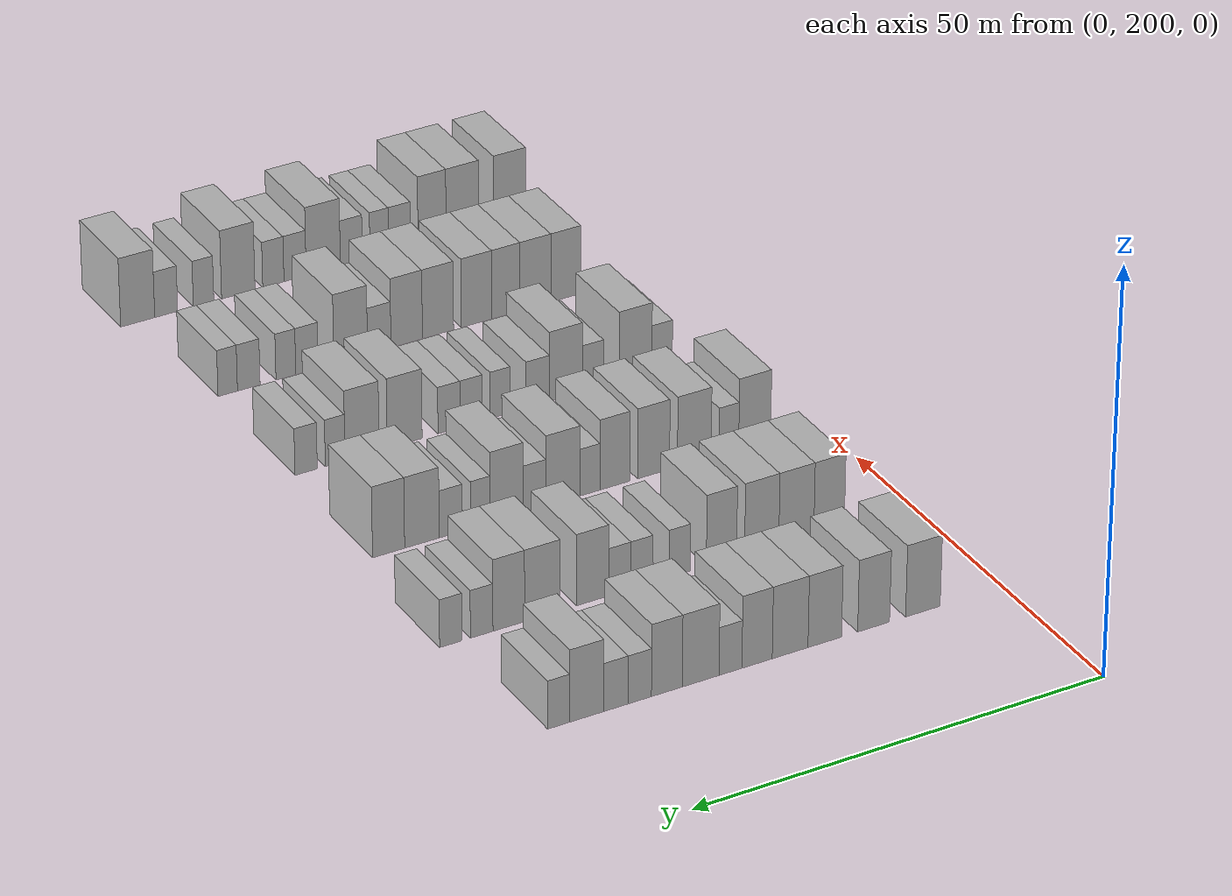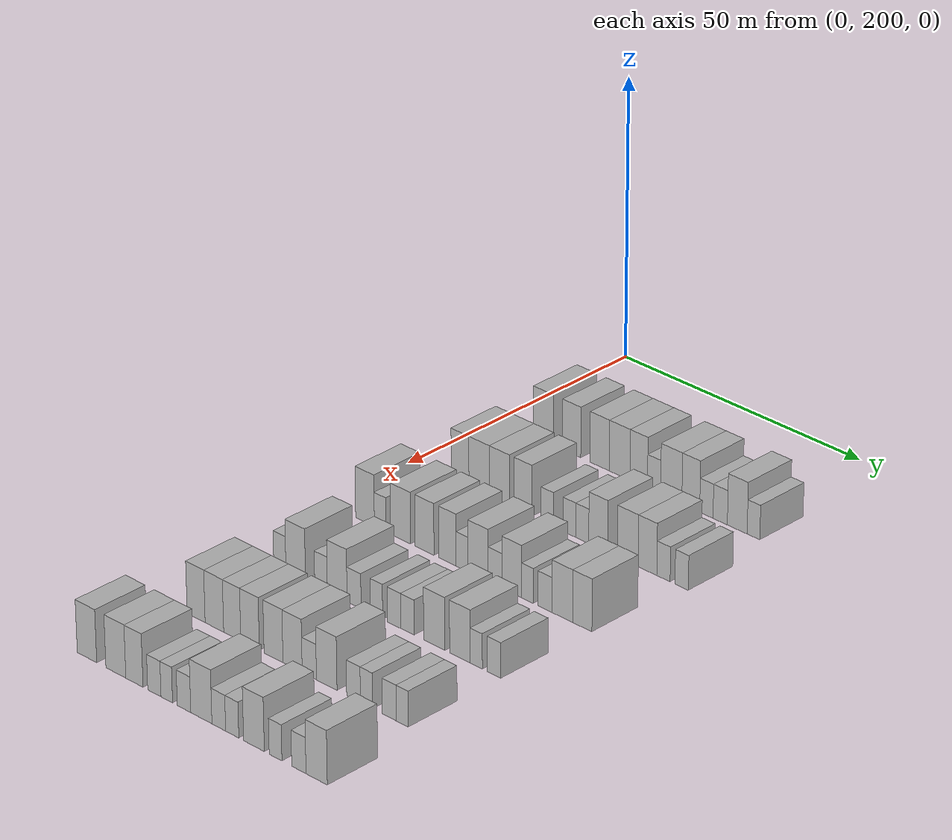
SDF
<sdf version="1.6">
 <world name="default">
  <model name="building_136">
   <static>1</static>
   <pose>25.0000 210.0454 0 0.000000 0.000000 0.000000</pose>
   <link name="link">
    <pose>0 0 4.50 0 0 0</pose>
    <collision name="collision"><geometry><box><size>10.0000 4.3215 9.0000</size></box></geometry></collision>
    <visual name="visual">
     <cast_shadows>0</cast_shadows>
     <geometry><box><size>10.0000 4.3215 9.0000</size></box></geometry>
     <material>
      <script>
       <uri>model://HANNAS_wall/materials/scripts</uri>
       <uri>model://HANNAS_wall/materials/textures</uri>
       <name>vrc/HANNAS_wall</name>
      </script>
     </material>
    </visual>
   </link>
  </model>
  <model name="building_137">
   <static>1</static>
   <pose>25.0000 216.1859 0 0.000000 0.000000 0.000000</pose>
   <link name="link">
    <pose>0 0 4.50 0 0 0</pose>
    <collision name="collision"><geometry><box><size>10.0000 3.9594 9.0000</size></box></geometry></collision>
    <visual name="visual">
     <cast_shadows>0</cast_shadows>
     <geometry><box><size>10.0000 3.9594 9.0000</size></box></geometry>
     <material>
      <script>
       <uri>model://HANNAS_wall/materials/scripts</uri>
       <uri>model://HANNAS_wall/materials/textures</uri>
       <name>vrc/HANNAS_wall</name>
      </script>
     </material>
    </visual>
   </link>
  </model>
  <model name="building_138">
   <static>1</static>
   <pose>25.0000 222.2354 0 0.000000 0.000000 0.000000</pose>
   <link name="link">
    <pose>0 0 4.50 0 0 0</pose>
    <collision name="collision"><geometry><box><size>10.0000 4.1397 9.0000</size></box></geometry></collision>
    <visual name="visual">
     <cast_shadows>0</cast_shadows>
     <geometry><box><size>10.0000 4.1397 9.0000</size></box></geometry>
     <material>
      <script>
       <uri>model://HANNAS_wall/materials/scripts</uri>
       <uri>model://HANNAS_wall/materials/textures</uri>
       <name>vrc/HANNAS_wall</name>
      </script>
     </material>
    </visual>
   </link>
  </model>
  <model name="building_139">
   <static>1</static>
   <pose>25.0000 226.5003 0 0.000000 0.000000 0.000000</pose>
   <link name="link">
    <pose>0 0 4.50 0 0 0</pose>
    <collision name="collision"><geometry><box><size>10.0000 4.3902 9.0000</size></box></geometry></collision>
    <visual name="visual">
     <cast_shadows>0</cast_shadows>
     <geometry><box><size>10.0000 4.3902 9.0000</size></box></geometry>
     <material>
      <script>
       <uri>model://HANNAS_wall/materials/scripts</uri>
       <uri>model://HANNAS_wall/materials/textures</uri>
       <name>vrc/HANNAS_wall</name>
      </script>
     </material>
    </visual>
   </link>
  </model>
  <model name="building_140">
   <static>1</static>
   <pose>25.0000 230.5487 0 0.000000 0.000000 0.000000</pose>
   <link name="link">
    <pose>0 0 4.50 0 0 0</pose>
    <collision name="collision"><geometry><box><size>10.0000 3.7067 9.0000</size></box></geometry></collision>
    <visual name="visual">
     <cast_shadows>0</cast_shadows>
     <geometry><box><size>10.0000 3.7067 9.0000</size></box></geometry>
     <material>
      <script>
       <uri>model://HANNAS_wall/materials/scripts</uri>
       <uri>model://HANNAS_wall/materials/textures</uri>
       <name>vrc/HANNAS_wall</name>
      </script>
     </material>
    </visual>
   </link>
  </model>
  <model name="building_141">
   <static>1</static>
   <pose>25.0000 233.7940 0 0.000000 0.000000 0.000000</pose>
   <link name="link">
    <pose>0 0 3.00 0 0 0</pose>
    <collision name="collision"><geometry><box><size>10.0000 2.7838 6.0000</size></box></geometry></collision>
    <visual name="visual">
     <cast_shadows>0</cast_shadows>
     <geometry><box><size>10.0000 2.7838 6.0000</size></box></geometry>
     <material>
      <script>
       <uri>model://HANNAS_wall/materials/scripts</uri>
       <uri>model://HANNAS_wall/materials/textures</uri>
       <name>vrc/HANNAS_wall</name>
      </script>
     </material>
    </visual>
   </link>
  </model>
  <model name="building_142">
   <static>1</static>
   <pose>25.0000 237.4143 0 0.000000 0.000000 0.000000</pose>
   <link name="link">
    <pose>0 0 4.50 0 0 0</pose>
    <collision name="collision"><geometry><box><size>10.0000 4.4569 9.0000</size></box></geometry></collision>
    <visual name="visual">
     <cast_shadows>0</cast_shadows>
     <geometry><box><size>10.0000 4.4569 9.0000</size></box></geometry>
     <material>
      <script>
       <uri>model://HANNAS_wall/materials/scripts</uri>
       <uri>model://HANNAS_wall/materials/textures</uri>
       <name>vrc/HANNAS_wall</name>
      </script>
     </material>
    </visual>
   </link>
  </model>
  <model name="building_143">
   <static>1</static>
   <pose>25.0000 241.5060 0 0.000000 0.000000 0.000000</pose>
   <link name="link">
    <pose>0 0 4.50 0 0 0</pose>
    <collision name="collision"><geometry><box><size>10.0000 3.7264 9.0000</size></box></geometry></collision>
    <visual name="visual">
     <cast_shadows>0</cast_shadows>
     <geometry><box><size>10.0000 3.7264 9.0000</size></box></geometry>
     <material>
      <script>
       <uri>model://HANNAS_wall/materials/scripts</uri>
       <uri>model://HANNAS_wall/materials/textures</uri>
       <name>vrc/HANNAS_wall</name>
      </script>
     </material>
    </visual>
   </link>
  </model>
  <model name="building_144">
   <static>1</static>
   <pose>25.0000 244.7549 0 0.000000 0.000000 0.000000</pose>
   <link name="link">
    <pose>0 0 3.00 0 0 0</pose>
    <collision name="collision"><geometry><box><size>10.0000 2.7715 6.0000</size></box></geometry></collision>
    <visual name="visual">
     <cast_shadows>0</cast_shadows>
     <geometry><box><size>10.0000 2.7715 6.0000</size></box></geometry>
     <material>
      <script>
       <uri>model://HANNAS_wall/materials/scripts</uri>
       <uri>model://HANNAS_wall/materials/textures</uri>
       <name>vrc/HANNAS_wall</name>
      </script>
     </material>
    </visual>
   </link>
  </model>
  <model name="building_145">
   <static>1</static>
   <pose>25.0000 247.6182 0 0.000000 0.000000 0.000000</pose>
   <link name="link">
    <pose>0 0 3.00 0 0 0</pose>
    <collision name="collision"><geometry><box><size>10.0000 2.9551 6.0000</size></box></geometry></collision>
    <visual name="visual">
     <cast_shadows>0</cast_shadows>
     <geometry><box><size>10.0000 2.9551 6.0000</size></box></geometry>
     <material>
      <script>
       <uri>model://HANNAS_wall/materials/scripts</uri>
       <uri>model://HANNAS_wall/materials/textures</uri>
       <name>vrc/HANNAS_wall</name>
      </script>
     </material>
    </visual>
   </link>
  </model>
  <model name="building_146">
   <static>1</static>
   <pose>25.0000 251.1307 0 0.000000 0.000000 0.000000</pose>
   <link name="link">
    <pose>0 0 4.50 0 0 0</pose>
    <collision name="collision"><geometry><box><size>10.0000 4.0699 9.0000</size></box></geometry></collision>
    <visual name="visual">
     <cast_shadows>0</cast_shadows>
     <geometry><box><size>10.0000 4.0699 9.0000</size></box></geometry>
     <material>
      <script>
       <uri>model://HANNAS_wall/materials/scripts</uri>
       <uri>model://HANNAS_wall/materials/textures</uri>
       <name>vrc/HANNAS_wall</name>
      </script>
     </material>
    </visual>
   </link>
  </model>
  <model name="building_147">
   <static>1</static>
   <pose>25.0000 254.4655 0 0.000000 0.000000 0.000000</pose>
   <link name="link">
    <pose>0 0 3.00 0 0 0</pose>
    <collision name="collision"><geometry><box><size>10.0000 2.5997 6.0000</size></box></geometry></collision>
    <visual name="visual">
     <cast_shadows>0</cast_shadows>
     <geometry><box><size>10.0000 2.5997 6.0000</size></box></geometry>
     <material>
      <script>
       <uri>model://HANNAS_wall/materials/scripts</uri>
       <uri>model://HANNAS_wall/materials/textures</uri>
       <name>vrc/HANNAS_wall</name>
      </script>
     </material>
    </visual>
   </link>
  </model>
  <model name="building_311">
   <static>1</static>
   <pose>44.0000 210.2769 0 0.000000 0.000000 0.000000</pose>
   <link name="link">
    <pose>0 0 4.50 0 0 0</pose>
    <collision name="collision"><geometry><box><size>10.0000 3.8651 9.0000</size></box></geometry></collision>
    <visual name="visual">
     <cast_shadows>0</cast_shadows>
     <geometry><box><size>10.0000 3.8651 9.0000</size></box></geometry>
     <material>
      <script>
       <uri>model://HANNAS_wall/materials/scripts</uri>
       <uri>model://HANNAS_wall/materials/textures</uri>
       <name>vrc/HANNAS_wall</name>
      </script>
     </material>
    </visual>
   </link>
  </model>
  <model name="building_312">
   <static>1</static>
   <pose>44.0000 214.4163 0 0.000000 0.000000 0.000000</pose>
   <link name="link">
    <pose>0 0 4.50 0 0 0</pose>
    <collision name="collision"><geometry><box><size>10.0000 4.4138 9.0000</size></box></geometry></collision>
    <visual name="visual">
     <cast_shadows>0</cast_shadows>
     <geometry><box><size>10.0000 4.4138 9.0000</size></box></geometry>
     <material>
      <script>
       <uri>model://HANNAS_wall/materials/scripts</uri>
       <uri>model://HANNAS_wall/materials/textures</uri>
       <name>vrc/HANNAS_wall</name>
      </script>
     </material>
    </visual>
   </link>
  </model>
  <model name="building_313">
   <static>1</static>
   <pose>44.0000 218.7697 0 0.000000 0.000000 0.000000</pose>
   <link name="link">
    <pose>0 0 4.50 0 0 0</pose>
    <collision name="collision"><geometry><box><size>10.0000 4.2930 9.0000</size></box></geometry></collision>
    <visual name="visual">
     <cast_shadows>0</cast_shadows>
     <geometry><box><size>10.0000 4.2930 9.0000</size></box></geometry>
     <material>
      <script>
       <uri>model://HANNAS_wall/materials/scripts</uri>
       <uri>model://HANNAS_wall/materials/textures</uri>
       <name>vrc/HANNAS_wall</name>
      </script>
     </material>
    </visual>
   </link>
  </model>
  <model name="building_314">
   <static>1</static>
   <pose>44.0000 223.8041 0 0.000000 0.000000 0.000000</pose>
   <link name="link">
    <pose>0 0 4.50 0 0 0</pose>
    <collision name="collision"><geometry><box><size>10.0000 3.7757 9.0000</size></box></geometry></collision>
    <visual name="visual">
     <cast_shadows>0</cast_shadows>
     <geometry><box><size>10.0000 3.7757 9.0000</size></box></geometry>
     <material>
      <script>
       <uri>model://HANNAS_wall/materials/scripts</uri>
       <uri>model://HANNAS_wall/materials/textures</uri>
       <name>vrc/HANNAS_wall</name>
      </script>
     </material>
    </visual>
   </link>
  </model>
  <model name="building_315">
   <static>1</static>
   <pose>44.0000 229.0140 0 0.000000 0.000000 0.000000</pose>
   <link name="link">
    <pose>0 0 3.00 0 0 0</pose>
    <collision name="collision"><geometry><box><size>10.0000 2.6440 6.0000</size></box></geometry></collision>
    <visual name="visual">
     <cast_shadows>0</cast_shadows>
     <geometry><box><size>10.0000 2.6440 6.0000</size></box></geometry>
     <material>
      <script>
       <uri>model://HANNAS_wall/materials/scripts</uri>
       <uri>model://HANNAS_wall/materials/textures</uri>
       <name>vrc/HANNAS_wall</name>
      </script>
     </material>
    </visual>
   </link>
  </model>
  <model name="building_316">
   <static>1</static>
   <pose>44.0000 233.6755 0 0.000000 0.000000 0.000000</pose>
   <link name="link">
    <pose>0 0 3.00 0 0 0</pose>
    <collision name="collision"><geometry><box><size>10.0000 2.6791 6.0000</size></box></geometry></collision>
    <visual name="visual">
     <cast_shadows>0</cast_shadows>
     <geometry><box><size>10.0000 2.6791 6.0000</size></box></geometry>
     <material>
      <script>
       <uri>model://HANNAS_wall/materials/scripts</uri>
       <uri>model://HANNAS_wall/materials/textures</uri>
       <name>vrc/HANNAS_wall</name>
      </script>
     </material>
    </visual>
   </link>
  </model>
  <model name="building_317">
   <static>1</static>
   <pose>44.0000 236.3857 0 0.000000 0.000000 0.000000</pose>
   <link name="link">
    <pose>0 0 3.00 0 0 0</pose>
    <collision name="collision"><geometry><box><size>10.0000 2.7412 6.0000</size></box></geometry></collision>
    <visual name="visual">
     <cast_shadows>0</cast_shadows>
     <geometry><box><size>10.0000 2.7412 6.0000</size></box></geometry>
     <material>
      <script>
       <uri>model://HANNAS_wall/materials/scripts</uri>
       <uri>model://HANNAS_wall/materials/textures</uri>
       <name>vrc/HANNAS_wall</name>
      </script>
     </material>
    </visual>
   </link>
  </model>
  <model name="building_318">
   <static>1</static>
   <pose>44.0000 239.7345 0 0.000000 0.000000 0.000000</pose>
   <link name="link">
    <pose>0 0 4.50 0 0 0</pose>
    <collision name="collision"><geometry><box><size>10.0000 3.9565 9.0000</size></box></geometry></collision>
    <visual name="visual">
     <cast_shadows>0</cast_shadows>
     <geometry><box><size>10.0000 3.9565 9.0000</size></box></geometry>
     <material>
      <script>
       <uri>model://HANNAS_wall/materials/scripts</uri>
       <uri>model://HANNAS_wall/materials/textures</uri>
       <name>vrc/HANNAS_wall</name>
      </script>
     </material>
    </visual>
   </link>
  </model>
  <model name="building_319">
   <static>1</static>
   <pose>44.0000 245.8673 0 0.000000 0.000000 0.000000</pose>
   <link name="link">
    <pose>0 0 4.50 0 0 0</pose>
    <collision name="collision"><geometry><box><size>10.0000 4.3091 9.0000</size></box></geometry></collision>
    <visual name="visual">
     <cast_shadows>0</cast_shadows>
     <geometry><box><size>10.0000 4.3091 9.0000</size></box></geometry>
     <material>
      <script>
       <uri>model://HANNAS_wall/materials/scripts</uri>
       <uri>model://HANNAS_wall/materials/textures</uri>
       <name>vrc/HANNAS_wall</name>
      </script>
     </material>
    </visual>
   </link>
  </model>
  <model name="building_320">
   <static>1</static>
   <pose>44.0000 249.9419 0 0.000000 0.000000 0.000000</pose>
   <link name="link">
    <pose>0 0 4.50 0 0 0</pose>
    <collision name="collision"><geometry><box><size>10.0000 3.8402 9.0000</size></box></geometry></collision>
    <visual name="visual">
     <cast_shadows>0</cast_shadows>
     <geometry><box><size>10.0000 3.8402 9.0000</size></box></geometry>
     <material>
      <script>
       <uri>model://HANNAS_wall/materials/scripts</uri>
       <uri>model://HANNAS_wall/materials/textures</uri>
       <name>vrc/HANNAS_wall</name>
      </script>
     </material>
    </visual>
   </link>
  </model>
  <model name="building_321">
   <static>1</static>
   <pose>44.0000 253.2237 0 0.000000 0.000000 0.000000</pose>
   <link name="link">
    <pose>0 0 3.00 0 0 0</pose>
    <collision name="collision"><geometry><box><size>10.0000 2.7232 6.0000</size></box></geometry></collision>
    <visual name="visual">
     <cast_shadows>0</cast_shadows>
     <geometry><box><size>10.0000 2.7232 6.0000</size></box></geometry>
     <material>
      <script>
       <uri>model://HANNAS_wall/materials/scripts</uri>
       <uri>model://HANNAS_wall/materials/textures</uri>
       <name>vrc/HANNAS_wall</name>
      </script>
     </material>
    </visual>
   </link>
  </model>
  <model name="building_322">
   <static>1</static>
   <pose>44.0000 256.9372 0 0.000000 0.000000 0.000000</pose>
   <link name="link">
    <pose>0 0 3.00 0 0 0</pose>
    <collision name="collision"><geometry><box><size>10.0000 2.7039 6.0000</size></box></geometry></collision>
    <visual name="visual">
     <cast_shadows>0</cast_shadows>
     <geometry><box><size>10.0000 2.7039 6.0000</size></box></geometry>
     <material>
      <script>
       <uri>model://HANNAS_wall/materials/scripts</uri>
       <uri>model://HANNAS_wall/materials/textures</uri>
       <name>vrc/HANNAS_wall</name>
      </script>
     </material>
    </visual>
   </link>
  </model>
  <model name="building_479">
   <static>1</static>
   <pose>63.0000 208.4648 0 0.000000 0.000000 0.000000</pose>
   <link name="link">
    <pose>0 0 4.50 0 0 0</pose>
    <collision name="collision"><geometry><box><size>10.0000 4.0990 9.0000</size></box></geometry></collision>
    <visual name="visual">
     <cast_shadows>0</cast_shadows>
     <geometry><box><size>10.0000 4.0990 9.0000</size></box></geometry>
     <material>
      <script>
       <uri>model://HANNAS_wall/materials/scripts</uri>
       <uri>model://HANNAS_wall/materials/textures</uri>
       <name>vrc/HANNAS_wall</name>
      </script>
     </material>
    </visual>
   </link>
  </model>
  <model name="building_480">
   <static>1</static>
   <pose>63.0000 211.7768 0 0.000000 0.000000 0.000000</pose>
   <link name="link">
    <pose>0 0 3.00 0 0 0</pose>
    <collision name="collision"><geometry><box><size>10.0000 2.5249 6.0000</size></box></geometry></collision>
    <visual name="visual">
     <cast_shadows>0</cast_shadows>
     <geometry><box><size>10.0000 2.5249 6.0000</size></box></geometry>
     <material>
      <script>
       <uri>model://HANNAS_wall/materials/scripts</uri>
       <uri>model://HANNAS_wall/materials/textures</uri>
       <name>vrc/HANNAS_wall</name>
      </script>
     </material>
    </visual>
   </link>
  </model>
  <model name="building_481">
   <static>1</static>
   <pose>63.0000 216.1873 0 0.000000 0.000000 0.000000</pose>
   <link name="link">
    <pose>0 0 4.50 0 0 0</pose>
    <collision name="collision"><geometry><box><size>10.0000 4.2960 9.0000</size></box></geometry></collision>
    <visual name="visual">
     <cast_shadows>0</cast_shadows>
     <geometry><box><size>10.0000 4.2960 9.0000</size></box></geometry>
     <material>
      <script>
       <uri>model://HANNAS_wall/materials/scripts</uri>
       <uri>model://HANNAS_wall/materials/textures</uri>
       <name>vrc/HANNAS_wall</name>
      </script>
     </material>
    </visual>
   </link>
  </model>
  <model name="building_482">
   <static>1</static>
   <pose>63.0000 221.3560 0 0.000000 0.000000 0.000000</pose>
   <link name="link">
    <pose>0 0 4.50 0 0 0</pose>
    <collision name="collision"><geometry><box><size>10.0000 4.0414 9.0000</size></box></geometry></collision>
    <visual name="visual">
     <cast_shadows>0</cast_shadows>
     <geometry><box><size>10.0000 4.0414 9.0000</size></box></geometry>
     <material>
      <script>
       <uri>model://HANNAS_wall/materials/scripts</uri>
       <uri>model://HANNAS_wall/materials/textures</uri>
       <name>vrc/HANNAS_wall</name>
      </script>
     </material>
    </visual>
   </link>
  </model>
  <model name="building_483">
   <static>1</static>
   <pose>63.0000 226.2411 0 0.000000 0.000000 0.000000</pose>
   <link name="link">
    <pose>0 0 4.50 0 0 0</pose>
    <collision name="collision"><geometry><box><size>10.0000 3.7288 9.0000</size></box></geometry></collision>
    <visual name="visual">
     <cast_shadows>0</cast_shadows>
     <geometry><box><size>10.0000 3.7288 9.0000</size></box></geometry>
     <material>
      <script>
       <uri>model://HANNAS_wall/materials/scripts</uri>
       <uri>model://HANNAS_wall/materials/textures</uri>
       <name>vrc/HANNAS_wall</name>
      </script>
     </material>
    </visual>
   </link>
  </model>
  <model name="building_484">
   <static>1</static>
   <pose>63.0000 229.3406 0 0.000000 0.000000 0.000000</pose>
   <link name="link">
    <pose>0 0 3.00 0 0 0</pose>
    <collision name="collision"><geometry><box><size>10.0000 2.4702 6.0000</size></box></geometry></collision>
    <visual name="visual">
     <cast_shadows>0</cast_shadows>
     <geometry><box><size>10.0000 2.4702 6.0000</size></box></geometry>
     <material>
      <script>
       <uri>model://HANNAS_wall/materials/scripts</uri>
       <uri>model://HANNAS_wall/materials/textures</uri>
       <name>vrc/HANNAS_wall</name>
      </script>
     </material>
    </visual>
   </link>
  </model>
  <model name="building_485">
   <static>1</static>
   <pose>63.0000 232.7208 0 0.000000 0.000000 0.000000</pose>
   <link name="link">
    <pose>0 0 4.50 0 0 0</pose>
    <collision name="collision"><geometry><box><size>10.0000 4.2902 9.0000</size></box></geometry></collision>
    <visual name="visual">
     <cast_shadows>0</cast_shadows>
     <geometry><box><size>10.0000 4.2902 9.0000</size></box></geometry>
     <material>
      <script>
       <uri>model://HANNAS_wall/materials/scripts</uri>
       <uri>model://HANNAS_wall/materials/textures</uri>
       <name>vrc/HANNAS_wall</name>
      </script>
     </material>
    </visual>
   </link>
  </model>
  <model name="building_486">
   <static>1</static>
   <pose>63.0000 236.2912 0 0.000000 0.000000 0.000000</pose>
   <link name="link">
    <pose>0 0 3.00 0 0 0</pose>
    <collision name="collision"><geometry><box><size>10.0000 2.8507 6.0000</size></box></geometry></collision>
    <visual name="visual">
     <cast_shadows>0</cast_shadows>
     <geometry><box><size>10.0000 2.8507 6.0000</size></box></geometry>
     <material>
      <script>
       <uri>model://HANNAS_wall/materials/scripts</uri>
       <uri>model://HANNAS_wall/materials/textures</uri>
       <name>vrc/HANNAS_wall</name>
      </script>
     </material>
    </visual>
   </link>
  </model>
  <model name="building_487">
   <static>1</static>
   <pose>63.0000 239.7804 0 0.000000 0.000000 0.000000</pose>
   <link name="link">
    <pose>0 0 4.50 0 0 0</pose>
    <collision name="collision"><geometry><box><size>10.0000 4.1278 9.0000</size></box></geometry></collision>
    <visual name="visual">
     <cast_shadows>0</cast_shadows>
     <geometry><box><size>10.0000 4.1278 9.0000</size></box></geometry>
     <material>
      <script>
       <uri>model://HANNAS_wall/materials/scripts</uri>
       <uri>model://HANNAS_wall/materials/textures</uri>
       <name>vrc/HANNAS_wall</name>
      </script>
     </material>
    </visual>
   </link>
  </model>
  <model name="building_488">
   <static>1</static>
   <pose>63.0000 243.0461 0 0.000000 0.000000 0.000000</pose>
   <link name="link">
    <pose>0 0 3.00 0 0 0</pose>
    <collision name="collision"><geometry><box><size>10.0000 2.4036 6.0000</size></box></geometry></collision>
    <visual name="visual">
     <cast_shadows>0</cast_shadows>
     <geometry><box><size>10.0000 2.4036 6.0000</size></box></geometry>
     <material>
      <script>
       <uri>model://HANNAS_wall/materials/scripts</uri>
       <uri>model://HANNAS_wall/materials/textures</uri>
       <name>vrc/HANNAS_wall</name>
      </script>
     </material>
    </visual>
   </link>
  </model>
  <model name="building_489">
   <static>1</static>
   <pose>63.0000 246.6742 0 0.000000 0.000000 0.000000</pose>
   <link name="link">
    <pose>0 0 3.00 0 0 0</pose>
    <collision name="collision"><geometry><box><size>10.0000 2.8528 6.0000</size></box></geometry></collision>
    <visual name="visual">
     <cast_shadows>0</cast_shadows>
     <geometry><box><size>10.0000 2.8528 6.0000</size></box></geometry>
     <material>
      <script>
       <uri>model://HANNAS_wall/materials/scripts</uri>
       <uri>model://HANNAS_wall/materials/textures</uri>
       <name>vrc/HANNAS_wall</name>
      </script>
     </material>
    </visual>
   </link>
  </model>
  <model name="building_490">
   <static>1</static>
   <pose>63.0000 250.2286 0 0.000000 0.000000 0.000000</pose>
   <link name="link">
    <pose>0 0 4.50 0 0 0</pose>
    <collision name="collision"><geometry><box><size>10.0000 4.2559 9.0000</size></box></geometry></collision>
    <visual name="visual">
     <cast_shadows>0</cast_shadows>
     <geometry><box><size>10.0000 4.2559 9.0000</size></box></geometry>
     <material>
      <script>
       <uri>model://HANNAS_wall/materials/scripts</uri>
       <uri>model://HANNAS_wall/materials/textures</uri>
       <name>vrc/HANNAS_wall</name>
      </script>
     </material>
    </visual>
   </link>
  </model>
  <model name="building_491">
   <static>1</static>
   <pose>63.0000 254.3176 0 0.000000 0.000000 0.000000</pose>
   <link name="link">
    <pose>0 0 4.50 0 0 0</pose>
    <collision name="collision"><geometry><box><size>10.0000 3.9222 9.0000</size></box></geometry></collision>
    <visual name="visual">
     <cast_shadows>0</cast_shadows>
     <geometry><box><size>10.0000 3.9222 9.0000</size></box></geometry>
     <material>
      <script>
       <uri>model://HANNAS_wall/materials/scripts</uri>
       <uri>model://HANNAS_wall/materials/textures</uri>
       <name>vrc/HANNAS_wall</name>
      </script>
     </material>
    </visual>
   </link>
  </model>
  <model name="building_655">
   <static>1</static>
   <pose>82.0000 209.3751 0 0.000000 0.000000 0.000000</pose>
   <link name="link">
    <pose>0 0 3.00 0 0 0</pose>
    <collision name="collision"><geometry><box><size>10.0000 2.6443 6.0000</size></box></geometry></collision>
    <visual name="visual">
     <cast_shadows>0</cast_shadows>
     <geometry><box><size>10.0000 2.6443 6.0000</size></box></geometry>
     <material>
      <script>
       <uri>model://HANNAS_wall/materials/scripts</uri>
       <uri>model://HANNAS_wall/materials/textures</uri>
       <name>vrc/HANNAS_wall</name>
      </script>
     </material>
    </visual>
   </link>
  </model>
  <model name="building_656">
   <static>1</static>
   <pose>82.0000 212.8264 0 0.000000 0.000000 0.000000</pose>
   <link name="link">
    <pose>0 0 4.50 0 0 0</pose>
    <collision name="collision"><geometry><box><size>10.0000 4.2584 9.0000</size></box></geometry></collision>
    <visual name="visual">
     <cast_shadows>0</cast_shadows>
     <geometry><box><size>10.0000 4.2584 9.0000</size></box></geometry>
     <material>
      <script>
       <uri>model://HANNAS_wall/materials/scripts</uri>
       <uri>model://HANNAS_wall/materials/textures</uri>
       <name>vrc/HANNAS_wall</name>
      </script>
     </material>
    </visual>
   </link>
  </model>
  <model name="building_657">
   <static>1</static>
   <pose>82.0000 218.3150 0 0.000000 0.000000 0.000000</pose>
   <link name="link">
    <pose>0 0 3.00 0 0 0</pose>
    <collision name="collision"><geometry><box><size>10.0000 2.7187 6.0000</size></box></geometry></collision>
    <visual name="visual">
     <cast_shadows>0</cast_shadows>
     <geometry><box><size>10.0000 2.7187 6.0000</size></box></geometry>
     <material>
      <script>
       <uri>model://HANNAS_wall/materials/scripts</uri>
       <uri>model://HANNAS_wall/materials/textures</uri>
       <name>vrc/HANNAS_wall</name>
      </script>
     </material>
    </visual>
   </link>
  </model>
  <model name="building_658">
   <static>1</static>
   <pose>82.0000 221.7836 0 0.000000 0.000000 0.000000</pose>
   <link name="link">
    <pose>0 0 4.50 0 0 0</pose>
    <collision name="collision"><geometry><box><size>10.0000 4.2187 9.0000</size></box></geometry></collision>
    <visual name="visual">
     <cast_shadows>0</cast_shadows>
     <geometry><box><size>10.0000 4.2187 9.0000</size></box></geometry>
     <material>
      <script>
       <uri>model://HANNAS_wall/materials/scripts</uri>
       <uri>model://HANNAS_wall/materials/textures</uri>
       <name>vrc/HANNAS_wall</name>
      </script>
     </material>
    </visual>
   </link>
  </model>
  <model name="building_659">
   <static>1</static>
   <pose>82.0000 225.3832 0 0.000000 0.000000 0.000000</pose>
   <link name="link">
    <pose>0 0 3.00 0 0 0</pose>
    <collision name="collision"><geometry><box><size>10.0000 2.9805 6.0000</size></box></geometry></collision>
    <visual name="visual">
     <cast_shadows>0</cast_shadows>
     <geometry><box><size>10.0000 2.9805 6.0000</size></box></geometry>
     <material>
      <script>
       <uri>model://HANNAS_wall/materials/scripts</uri>
       <uri>model://HANNAS_wall/materials/textures</uri>
       <name>vrc/HANNAS_wall</name>
      </script>
     </material>
    </visual>
   </link>
  </model>
  <model name="building_660">
   <static>1</static>
   <pose>82.0000 230.1546 0 0.000000 0.000000 0.000000</pose>
   <link name="link">
    <pose>0 0 3.00 0 0 0</pose>
    <collision name="collision"><geometry><box><size>10.0000 2.5622 6.0000</size></box></geometry></collision>
    <visual name="visual">
     <cast_shadows>0</cast_shadows>
     <geometry><box><size>10.0000 2.5622 6.0000</size></box></geometry>
     <material>
      <script>
       <uri>model://HANNAS_wall/materials/scripts</uri>
       <uri>model://HANNAS_wall/materials/textures</uri>
       <name>vrc/HANNAS_wall</name>
      </script>
     </material>
    </visual>
   </link>
  </model>
  <model name="building_661">
   <static>1</static>
   <pose>82.0000 233.8354 0 0.000000 0.000000 0.000000</pose>
   <link name="link">
    <pose>0 0 3.00 0 0 0</pose>
    <collision name="collision"><geometry><box><size>10.0000 2.7995 6.0000</size></box></geometry></collision>
    <visual name="visual">
     <cast_shadows>0</cast_shadows>
     <geometry><box><size>10.0000 2.7995 6.0000</size></box></geometry>
     <material>
      <script>
       <uri>model://HANNAS_wall/materials/scripts</uri>
       <uri>model://HANNAS_wall/materials/textures</uri>
       <name>vrc/HANNAS_wall</name>
      </script>
     </material>
    </visual>
   </link>
  </model>
  <model name="building_662">
   <static>1</static>
   <pose>82.0000 236.6398 0 0.000000 0.000000 0.000000</pose>
   <link name="link">
    <pose>0 0 3.00 0 0 0</pose>
    <collision name="collision"><geometry><box><size>10.0000 2.8092 6.0000</size></box></geometry></collision>
    <visual name="visual">
     <cast_shadows>0</cast_shadows>
     <geometry><box><size>10.0000 2.8092 6.0000</size></box></geometry>
     <material>
      <script>
       <uri>model://HANNAS_wall/materials/scripts</uri>
       <uri>model://HANNAS_wall/materials/textures</uri>
       <name>vrc/HANNAS_wall</name>
      </script>
     </material>
    </visual>
   </link>
  </model>
  <model name="building_663">
   <static>1</static>
   <pose>82.0000 242.2332 0 0.000000 0.000000 0.000000</pose>
   <link name="link">
    <pose>0 0 4.50 0 0 0</pose>
    <collision name="collision"><geometry><box><size>10.0000 4.3776 9.0000</size></box></geometry></collision>
    <visual name="visual">
     <cast_shadows>0</cast_shadows>
     <geometry><box><size>10.0000 4.3776 9.0000</size></box></geometry>
     <material>
      <script>
       <uri>model://HANNAS_wall/materials/scripts</uri>
       <uri>model://HANNAS_wall/materials/textures</uri>
       <name>vrc/HANNAS_wall</name>
      </script>
     </material>
    </visual>
   </link>
  </model>
  <model name="building_664">
   <static>1</static>
   <pose>82.0000 247.5526 0 0.000000 0.000000 0.000000</pose>
   <link name="link">
    <pose>0 0 4.50 0 0 0</pose>
    <collision name="collision"><geometry><box><size>10.0000 4.2613 9.0000</size></box></geometry></collision>
    <visual name="visual">
     <cast_shadows>0</cast_shadows>
     <geometry><box><size>10.0000 4.2613 9.0000</size></box></geometry>
     <material>
      <script>
       <uri>model://HANNAS_wall/materials/scripts</uri>
       <uri>model://HANNAS_wall/materials/textures</uri>
       <name>vrc/HANNAS_wall</name>
      </script>
     </material>
    </visual>
   </link>
  </model>
  <model name="building_665">
   <static>1</static>
   <pose>82.0000 250.9095 0 0.000000 0.000000 0.000000</pose>
   <link name="link">
    <pose>0 0 3.00 0 0 0</pose>
    <collision name="collision"><geometry><box><size>10.0000 2.4526 6.0000</size></box></geometry></collision>
    <visual name="visual">
     <cast_shadows>0</cast_shadows>
     <geometry><box><size>10.0000 2.4526 6.0000</size></box></geometry>
     <material>
      <script>
       <uri>model://HANNAS_wall/materials/scripts</uri>
       <uri>model://HANNAS_wall/materials/textures</uri>
       <name>vrc/HANNAS_wall</name>
      </script>
     </material>
    </visual>
   </link>
  </model>
  <model name="building_666">
   <static>1</static>
   <pose>82.0000 254.5153 0 0.000000 0.000000 0.000000</pose>
   <link name="link">
    <pose>0 0 3.00 0 0 0</pose>
    <collision name="collision"><geometry><box><size>10.0000 2.7590 6.0000</size></box></geometry></collision>
    <visual name="visual">
     <cast_shadows>0</cast_shadows>
     <geometry><box><size>10.0000 2.7590 6.0000</size></box></geometry>
     <material>
      <script>
       <uri>model://HANNAS_wall/materials/scripts</uri>
       <uri>model://HANNAS_wall/materials/textures</uri>
       <name>vrc/HANNAS_wall</name>
      </script>
     </material>
    </visual>
   </link>
  </model>
  <model name="building_824">
   <static>1</static>
   <pose>101.0000 211.1937 0 0.000000 0.000000 0.000000</pose>
   <link name="link">
    <pose>0 0 4.50 0 0 0</pose>
    <collision name="collision"><geometry><box><size>10.0000 3.9053 9.0000</size></box></geometry></collision>
    <visual name="visual">
     <cast_shadows>0</cast_shadows>
     <geometry><box><size>10.0000 3.9053 9.0000</size></box></geometry>
     <material>
      <script>
       <uri>model://HANNAS_wall/materials/scripts</uri>
       <uri>model://HANNAS_wall/materials/textures</uri>
       <name>vrc/HANNAS_wall</name>
      </script>
     </material>
    </visual>
   </link>
  </model>
  <model name="building_825">
   <static>1</static>
   <pose>101.0000 215.1587 0 0.000000 0.000000 0.000000</pose>
   <link name="link">
    <pose>0 0 4.50 0 0 0</pose>
    <collision name="collision"><geometry><box><size>10.0000 4.0246 9.0000</size></box></geometry></collision>
    <visual name="visual">
     <cast_shadows>0</cast_shadows>
     <geometry><box><size>10.0000 4.0246 9.0000</size></box></geometry>
     <material>
      <script>
       <uri>model://HANNAS_wall/materials/scripts</uri>
       <uri>model://HANNAS_wall/materials/textures</uri>
       <name>vrc/HANNAS_wall</name>
      </script>
     </material>
    </visual>
   </link>
  </model>
  <model name="building_826">
   <static>1</static>
   <pose>101.0000 219.0073 0 0.000000 0.000000 0.000000</pose>
   <link name="link">
    <pose>0 0 4.50 0 0 0</pose>
    <collision name="collision"><geometry><box><size>10.0000 3.6726 9.0000</size></box></geometry></collision>
    <visual name="visual">
     <cast_shadows>0</cast_shadows>
     <geometry><box><size>10.0000 3.6726 9.0000</size></box></geometry>
     <material>
      <script>
       <uri>model://HANNAS_wall/materials/scripts</uri>
       <uri>model://HANNAS_wall/materials/textures</uri>
       <name>vrc/HANNAS_wall</name>
      </script>
     </material>
    </visual>
   </link>
  </model>
  <model name="building_827">
   <static>1</static>
   <pose>101.0000 222.8292 0 0.000000 0.000000 0.000000</pose>
   <link name="link">
    <pose>0 0 4.50 0 0 0</pose>
    <collision name="collision"><geometry><box><size>10.0000 3.9713 9.0000</size></box></geometry></collision>
    <visual name="visual">
     <cast_shadows>0</cast_shadows>
     <geometry><box><size>10.0000 3.9713 9.0000</size></box></geometry>
     <material>
      <script>
       <uri>model://HANNAS_wall/materials/scripts</uri>
       <uri>model://HANNAS_wall/materials/textures</uri>
       <name>vrc/HANNAS_wall</name>
      </script>
     </material>
    </visual>
   </link>
  </model>
  <model name="building_828">
   <static>1</static>
   <pose>101.0000 227.8229 0 0.000000 0.000000 0.000000</pose>
   <link name="link">
    <pose>0 0 4.50 0 0 0</pose>
    <collision name="collision"><geometry><box><size>10.0000 4.0161 9.0000</size></box></geometry></collision>
    <visual name="visual">
     <cast_shadows>0</cast_shadows>
     <geometry><box><size>10.0000 4.0161 9.0000</size></box></geometry>
     <material>
      <script>
       <uri>model://HANNAS_wall/materials/scripts</uri>
       <uri>model://HANNAS_wall/materials/textures</uri>
       <name>vrc/HANNAS_wall</name>
      </script>
     </material>
    </visual>
   </link>
  </model>
  <model name="building_829">
   <static>1</static>
   <pose>101.0000 231.8519 0 0.000000 0.000000 0.000000</pose>
   <link name="link">
    <pose>0 0 4.50 0 0 0</pose>
    <collision name="collision"><geometry><box><size>10.0000 4.0420 9.0000</size></box></geometry></collision>
    <visual name="visual">
     <cast_shadows>0</cast_shadows>
     <geometry><box><size>10.0000 4.0420 9.0000</size></box></geometry>
     <material>
      <script>
       <uri>model://HANNAS_wall/materials/scripts</uri>
       <uri>model://HANNAS_wall/materials/textures</uri>
       <name>vrc/HANNAS_wall</name>
      </script>
     </material>
    </visual>
   </link>
  </model>
  <model name="building_830">
   <static>1</static>
   <pose>101.0000 235.3712 0 0.000000 0.000000 0.000000</pose>
   <link name="link">
    <pose>0 0 3.00 0 0 0</pose>
    <collision name="collision"><geometry><box><size>10.0000 2.9966 6.0000</size></box></geometry></collision>
    <visual name="visual">
     <cast_shadows>0</cast_shadows>
     <geometry><box><size>10.0000 2.9966 6.0000</size></box></geometry>
     <material>
      <script>
       <uri>model://HANNAS_wall/materials/scripts</uri>
       <uri>model://HANNAS_wall/materials/textures</uri>
       <name>vrc/HANNAS_wall</name>
      </script>
     </material>
    </visual>
   </link>
  </model>
  <model name="building_831">
   <static>1</static>
   <pose>101.0000 239.0142 0 0.000000 0.000000 0.000000</pose>
   <link name="link">
    <pose>0 0 4.50 0 0 0</pose>
    <collision name="collision"><geometry><box><size>10.0000 4.2894 9.0000</size></box></geometry></collision>
    <visual name="visual">
     <cast_shadows>0</cast_shadows>
     <geometry><box><size>10.0000 4.2894 9.0000</size></box></geometry>
     <material>
      <script>
       <uri>model://HANNAS_wall/materials/scripts</uri>
       <uri>model://HANNAS_wall/materials/textures</uri>
       <name>vrc/HANNAS_wall</name>
      </script>
     </material>
    </visual>
   </link>
  </model>
  <model name="building_832">
   <static>1</static>
   <pose>101.0000 244.5797 0 0.000000 0.000000 0.000000</pose>
   <link name="link">
    <pose>0 0 3.00 0 0 0</pose>
    <collision name="collision"><geometry><box><size>10.0000 2.8417 6.0000</size></box></geometry></collision>
    <visual name="visual">
     <cast_shadows>0</cast_shadows>
     <geometry><box><size>10.0000 2.8417 6.0000</size></box></geometry>
     <material>
      <script>
       <uri>model://HANNAS_wall/materials/scripts</uri>
       <uri>model://HANNAS_wall/materials/textures</uri>
       <name>vrc/HANNAS_wall</name>
      </script>
     </material>
    </visual>
   </link>
  </model>
  <model name="building_833">
   <static>1</static>
   <pose>101.0000 247.2533 0 0.000000 0.000000 0.000000</pose>
   <link name="link">
    <pose>0 0 3.00 0 0 0</pose>
    <collision name="collision"><geometry><box><size>10.0000 2.5054 6.0000</size></box></geometry></collision>
    <visual name="visual">
     <cast_shadows>0</cast_shadows>
     <geometry><box><size>10.0000 2.5054 6.0000</size></box></geometry>
     <material>
      <script>
       <uri>model://HANNAS_wall/materials/scripts</uri>
       <uri>model://HANNAS_wall/materials/textures</uri>
       <name>vrc/HANNAS_wall</name>
      </script>
     </material>
    </visual>
   </link>
  </model>
  <model name="building_834">
   <static>1</static>
   <pose>101.0000 251.9292 0 0.000000 0.000000 0.000000</pose>
   <link name="link">
    <pose>0 0 3.00 0 0 0</pose>
    <collision name="collision"><geometry><box><size>10.0000 2.8464 6.0000</size></box></geometry></collision>
    <visual name="visual">
     <cast_shadows>0</cast_shadows>
     <geometry><box><size>10.0000 2.8464 6.0000</size></box></geometry>
     <material>
      <script>
       <uri>model://HANNAS_wall/materials/scripts</uri>
       <uri>model://HANNAS_wall/materials/textures</uri>
       <name>vrc/HANNAS_wall</name>
      </script>
     </material>
    </visual>
   </link>
  </model>
  <model name="building_835">
   <static>1</static>
   <pose>101.0000 254.5715 0 0.000000 0.000000 0.000000</pose>
   <link name="link">
    <pose>0 0 3.00 0 0 0</pose>
    <collision name="collision"><geometry><box><size>10.0000 2.4383 6.0000</size></box></geometry></collision>
    <visual name="visual">
     <cast_shadows>0</cast_shadows>
     <geometry><box><size>10.0000 2.4383 6.0000</size></box></geometry>
     <material>
      <script>
       <uri>model://HANNAS_wall/materials/scripts</uri>
       <uri>model://HANNAS_wall/materials/textures</uri>
       <name>vrc/HANNAS_wall</name>
      </script>
     </material>
    </visual>
   </link>
  </model>
  <model name="building_996">
   <static>1</static>
   <pose>120.0000 208.0752 0 0.000000 0.000000 0.000000</pose>
   <link name="link">
    <pose>0 0 4.50 0 0 0</pose>
    <collision name="collision"><geometry><box><size>10.0000 4.2568 9.0000</size></box></geometry></collision>
    <visual name="visual">
     <cast_shadows>0</cast_shadows>
     <geometry><box><size>10.0000 4.2568 9.0000</size></box></geometry>
     <material>
      <script>
       <uri>model://HANNAS_wall/materials/scripts</uri>
       <uri>model://HANNAS_wall/materials/textures</uri>
       <name>vrc/HANNAS_wall</name>
      </script>
     </material>
    </visual>
   </link>
  </model>
  <model name="building_997">
   <static>1</static>
   <pose>120.0000 214.3650 0 0.000000 0.000000 0.000000</pose>
   <link name="link">
    <pose>0 0 4.50 0 0 0</pose>
    <collision name="collision"><geometry><box><size>10.0000 4.3227 9.0000</size></box></geometry></collision>
    <visual name="visual">
     <cast_shadows>0</cast_shadows>
     <geometry><box><size>10.0000 4.3227 9.0000</size></box></geometry>
     <material>
      <script>
       <uri>model://HANNAS_wall/materials/scripts</uri>
       <uri>model://HANNAS_wall/materials/textures</uri>
       <name>vrc/HANNAS_wall</name>
      </script>
     </material>
    </visual>
   </link>
  </model>
  <model name="building_998">
   <static>1</static>
   <pose>120.0000 218.3800 0 0.000000 0.000000 0.000000</pose>
   <link name="link">
    <pose>0 0 4.50 0 0 0</pose>
    <collision name="collision"><geometry><box><size>10.0000 3.7072 9.0000</size></box></geometry></collision>
    <visual name="visual">
     <cast_shadows>0</cast_shadows>
     <geometry><box><size>10.0000 3.7072 9.0000</size></box></geometry>
     <material>
      <script>
       <uri>model://HANNAS_wall/materials/scripts</uri>
       <uri>model://HANNAS_wall/materials/textures</uri>
       <name>vrc/HANNAS_wall</name>
      </script>
     </material>
    </visual>
   </link>
  </model>
  <model name="building_999">
   <static>1</static>
   <pose>120.0000 222.6576 0 0.000000 0.000000 0.000000</pose>
   <link name="link">
    <pose>0 0 3.00 0 0 0</pose>
    <collision name="collision"><geometry><box><size>10.0000 2.8481 6.0000</size></box></geometry></collision>
    <visual name="visual">
     <cast_shadows>0</cast_shadows>
     <geometry><box><size>10.0000 2.8481 6.0000</size></box></geometry>
     <material>
      <script>
       <uri>model://HANNAS_wall/materials/scripts</uri>
       <uri>model://HANNAS_wall/materials/textures</uri>
       <name>vrc/HANNAS_wall</name>
      </script>
     </material>
    </visual>
   </link>
  </model>
  <model name="building_1000">
   <static>1</static>
   <pose>120.0000 225.3131 0 0.000000 0.000000 0.000000</pose>
   <link name="link">
    <pose>0 0 3.00 0 0 0</pose>
    <collision name="collision"><geometry><box><size>10.0000 2.4628 6.0000</size></box></geometry></collision>
    <visual name="visual">
     <cast_shadows>0</cast_shadows>
     <geometry><box><size>10.0000 2.4628 6.0000</size></box></geometry>
     <material>
      <script>
       <uri>model://HANNAS_wall/materials/scripts</uri>
       <uri>model://HANNAS_wall/materials/textures</uri>
       <name>vrc/HANNAS_wall</name>
      </script>
     </material>
    </visual>
   </link>
  </model>
  <model name="building_1001">
   <static>1</static>
   <pose>120.0000 228.9763 0 0.000000 0.000000 0.000000</pose>
   <link name="link">
    <pose>0 0 3.00 0 0 0</pose>
    <collision name="collision"><geometry><box><size>10.0000 2.8636 6.0000</size></box></geometry></collision>
    <visual name="visual">
     <cast_shadows>0</cast_shadows>
     <geometry><box><size>10.0000 2.8636 6.0000</size></box></geometry>
     <material>
      <script>
       <uri>model://HANNAS_wall/materials/scripts</uri>
       <uri>model://HANNAS_wall/materials/textures</uri>
       <name>vrc/HANNAS_wall</name>
      </script>
     </material>
    </visual>
   </link>
  </model>
  <model name="building_1002">
   <static>1</static>
   <pose>120.0000 232.6335 0 0.000000 0.000000 0.000000</pose>
   <link name="link">
    <pose>0 0 4.50 0 0 0</pose>
    <collision name="collision"><geometry><box><size>10.0000 4.4510 9.0000</size></box></geometry></collision>
    <visual name="visual">
     <cast_shadows>0</cast_shadows>
     <geometry><box><size>10.0000 4.4510 9.0000</size></box></geometry>
     <material>
      <script>
       <uri>model://HANNAS_wall/materials/scripts</uri>
       <uri>model://HANNAS_wall/materials/textures</uri>
       <name>vrc/HANNAS_wall</name>
      </script>
     </material>
    </visual>
   </link>
  </model>
  <model name="building_1003">
   <static>1</static>
   <pose>120.0000 236.2949 0 0.000000 0.000000 0.000000</pose>
   <link name="link">
    <pose>0 0 3.00 0 0 0</pose>
    <collision name="collision"><geometry><box><size>10.0000 2.8718 6.0000</size></box></geometry></collision>
    <visual name="visual">
     <cast_shadows>0</cast_shadows>
     <geometry><box><size>10.0000 2.8718 6.0000</size></box></geometry>
     <material>
      <script>
       <uri>model://HANNAS_wall/materials/scripts</uri>
       <uri>model://HANNAS_wall/materials/textures</uri>
       <name>vrc/HANNAS_wall</name>
      </script>
     </material>
    </visual>
   </link>
  </model>
  <model name="building_1004">
   <static>1</static>
   <pose>120.0000 239.1020 0 0.000000 0.000000 0.000000</pose>
   <link name="link">
    <pose>0 0 3.00 0 0 0</pose>
    <collision name="collision"><geometry><box><size>10.0000 2.7423 6.0000</size></box></geometry></collision>
    <visual name="visual">
     <cast_shadows>0</cast_shadows>
     <geometry><box><size>10.0000 2.7423 6.0000</size></box></geometry>
     <material>
      <script>
       <uri>model://HANNAS_wall/materials/scripts</uri>
       <uri>model://HANNAS_wall/materials/textures</uri>
       <name>vrc/HANNAS_wall</name>
      </script>
     </material>
    </visual>
   </link>
  </model>
  <model name="building_1005">
   <static>1</static>
   <pose>120.0000 243.6178 0 0.000000 0.000000 0.000000</pose>
   <link name="link">
    <pose>0 0 4.50 0 0 0</pose>
    <collision name="collision"><geometry><box><size>10.0000 4.2894 9.0000</size></box></geometry></collision>
    <visual name="visual">
     <cast_shadows>0</cast_shadows>
     <geometry><box><size>10.0000 4.2894 9.0000</size></box></geometry>
     <material>
      <script>
       <uri>model://HANNAS_wall/materials/scripts</uri>
       <uri>model://HANNAS_wall/materials/textures</uri>
       <name>vrc/HANNAS_wall</name>
      </script>
     </material>
    </visual>
   </link>
  </model>
  <model name="building_1006">
   <static>1</static>
   <pose>120.0000 248.0703 0 0.000000 0.000000 0.000000</pose>
   <link name="link">
    <pose>0 0 3.00 0 0 0</pose>
    <collision name="collision"><geometry><box><size>10.0000 2.6157 6.0000</size></box></geometry></collision>
    <visual name="visual">
     <cast_shadows>0</cast_shadows>
     <geometry><box><size>10.0000 2.6157 6.0000</size></box></geometry>
     <material>
      <script>
       <uri>model://HANNAS_wall/materials/scripts</uri>
       <uri>model://HANNAS_wall/materials/textures</uri>
       <name>vrc/HANNAS_wall</name>
      </script>
     </material>
    </visual>
   </link>
  </model>
  <model name="building_1007">
   <static>1</static>
   <pose>120.0000 252.8384 0 0.000000 0.000000 0.000000</pose>
   <link name="link">
    <pose>0 0 3.00 0 0 0</pose>
    <collision name="collision"><geometry><box><size>10.0000 2.9205 6.0000</size></box></geometry></collision>
    <visual name="visual">
     <cast_shadows>0</cast_shadows>
     <geometry><box><size>10.0000 2.9205 6.0000</size></box></geometry>
     <material>
      <script>
       <uri>model://HANNAS_wall/materials/scripts</uri>
       <uri>model://HANNAS_wall/materials/textures</uri>
       <name>vrc/HANNAS_wall</name>
      </script>
     </material>
    </visual>
   </link>
  </model>
  <model name="building_1008">
   <static>1</static>
   <pose>120.0000 256.4600 0 0.000000 0.000000 0.000000</pose>
   <link name="link">
    <pose>0 0 4.50 0 0 0</pose>
    <collision name="collision"><geometry><box><size>10.0000 4.3226 9.0000</size></box></geometry></collision>
    <visual name="visual">
     <cast_shadows>0</cast_shadows>
     <geometry><box><size>10.0000 4.3226 9.0000</size></box></geometry>
     <material>
      <script>
       <uri>model://HANNAS_wall/materials/scripts</uri>
       <uri>model://HANNAS_wall/materials/textures</uri>
       <name>vrc/HANNAS_wall</name>
      </script>
     </material>
    </visual>
   </link>
  </model>
 </world>
</sdf>
